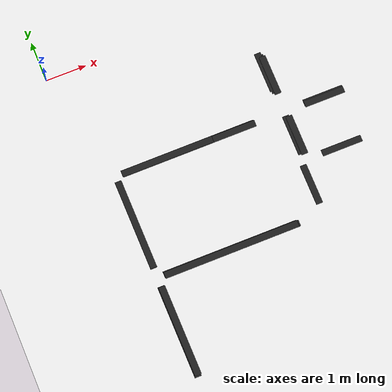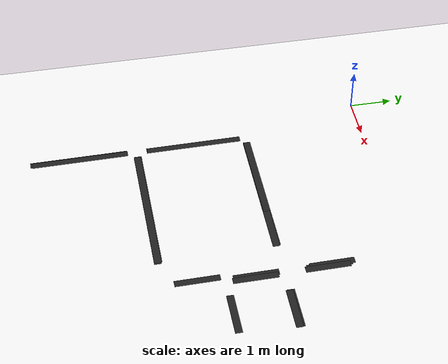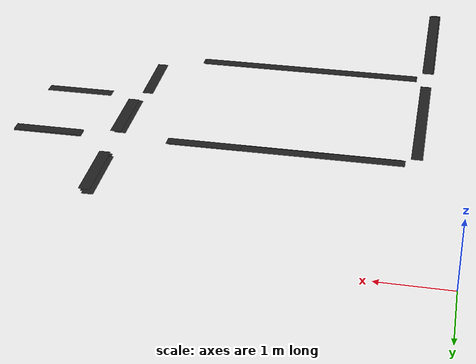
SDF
<sdf version="1.7">
 <world name="default">
  <model name="ground_plane">
   <static>1</static>
   <link name="link">
    <collision name="collision">
     <geometry><plane><normal>0 0 1</normal><size>100 100</size></plane></geometry>
     <surface>
      <contact><collide_bitmask>65535</collide_bitmask></contact>
      <friction><ode><mu>100</mu><mu2>50</mu2></ode></friction>
     </surface>
    </collision>
    <visual name="visual">
     <cast_shadows>0</cast_shadows>
     <geometry><plane><normal>0 0 1</normal><size>100 100</size></plane></geometry>
     <material>
      <script><uri>file://media/materials/scripts/gazebo.material</uri><name>Gazebo/White</name></script>
     </material>
    </visual>
   </link>
  </model>
  <model name="unit_box_clone_0_clone_clone_0_clone_clone_clone">
   <link name="link">
    <inertial>
     <mass>1</mass>
     <inertia>
      <ixx>0.166667</ixx>
      <ixy>0</ixy>
      <ixz>0</ixz>
      <iyy>0.166667</iyy>
      <iyz>0</iyz>
      <izz>0.166667</izz>
     </inertia>
    </inertial>
    <visual name="visual">
     <geometry><box><size>1 0.160776 0.000937</size></box></geometry>
     <material>
      <script><name>Gazebo/Black</name><uri>file://media/materials/scripts/gazebo.material</uri></script>
      <shader type="pixel"><normal_map>__default__</normal_map></shader>
      <ambient>0 0 0 1</ambient>
      <diffuse>0 0 0 1</diffuse>
      <specular>0.1 0.1 0.1 1</specular>
      <emissive>0 0 0 1</emissive>
     </material>
    </visual>
    <collision name="collision">
     <geometry><box><size>1 0.160776 0.000937</size></box></geometry>
     <surface>
      <friction>
       <ode><mu>1</mu><mu2>1</mu2><fdir1>0 0 0</fdir1><slip1>0</slip1><slip2>0</slip2></ode>
       <torsional>
        <coefficient>1</coefficient>
        <patch_radius>0</patch_radius>
        <surface_radius>0</surface_radius>
        <use_patch_radius>1</use_patch_radius>
        <ode><slip>0</slip></ode>
       </torsional>
      </friction>
      <bounce><restitution_coefficient>0</restitution_coefficient><threshold>1e+06</threshold></bounce>
      <contact>
       <collide_without_contact>0</collide_without_contact>
       <collide_without_contact_bitmask>1</collide_without_contact_bitmask>
       <collide_bitmask>1</collide_bitmask>
       <ode>
        <soft_cfm>0</soft_cfm>
        <soft_erp>0.2</soft_erp>
        <kp>1e+13</kp>
        <kd>1</kd>
        <max_vel>0.01</max_vel>
        <min_depth>0</min_depth>
       </ode>
       <bullet>
        <split_impulse>1</split_impulse>
        <split_impulse_penetration_threshold>-0.01</split_impulse_penetration_threshold>
        <soft_cfm>0</soft_cfm>
        <soft_erp>0.2</soft_erp>
        <kp>1e+13</kp>
        <kd>1</kd>
       </bullet>
      </contact>
     </surface>
    </collision>
   </link>
   <static>0</static>
   <pose>4.8423 -4.65666 0.000468 -0 -0 -1.56222</pose>
  </model>
  <model name="unit_box_clone_0_clone_clone_0_clone_clone_0">
   <link name="link">
    <inertial>
     <mass>1</mass>
     <inertia>
      <ixx>0.166667</ixx>
      <ixy>0</ixy>
      <ixz>0</ixz>
      <iyy>0.166667</iyy>
      <iyz>0</iyz>
      <izz>0.166667</izz>
     </inertia>
    </inertial>
    <visual name="visual">
     <geometry><box><size>1 0.160776 0.000937</size></box></geometry>
     <material>
      <script><name>Gazebo/Black</name><uri>file://media/materials/scripts/gazebo.material</uri></script>
      <shader type="pixel"><normal_map>__default__</normal_map></shader>
      <ambient>0 0 0 1</ambient>
      <diffuse>0 0 0 1</diffuse>
      <specular>0.1 0.1 0.1 1</specular>
      <emissive>0 0 0 1</emissive>
     </material>
    </visual>
    <collision name="collision">
     <geometry><box><size>1 0.160776 0.000937</size></box></geometry>
     <surface>
      <friction>
       <ode><mu>1</mu><mu2>1</mu2><fdir1>0 0 0</fdir1><slip1>0</slip1><slip2>0</slip2></ode>
       <torsional>
        <coefficient>1</coefficient>
        <patch_radius>0</patch_radius>
        <surface_radius>0</surface_radius>
        <use_patch_radius>1</use_patch_radius>
        <ode><slip>0</slip></ode>
       </torsional>
      </friction>
      <bounce><restitution_coefficient>0</restitution_coefficient><threshold>1e+06</threshold></bounce>
      <contact>
       <collide_without_contact>0</collide_without_contact>
       <collide_without_contact_bitmask>1</collide_without_contact_bitmask>
       <collide_bitmask>1</collide_bitmask>
       <ode>
        <soft_cfm>0</soft_cfm>
        <soft_erp>0.2</soft_erp>
        <kp>1e+13</kp>
        <kd>1</kd>
        <max_vel>0.01</max_vel>
        <min_depth>0</min_depth>
       </ode>
       <bullet>
        <split_impulse>1</split_impulse>
        <split_impulse_penetration_threshold>-0.01</split_impulse_penetration_threshold>
        <soft_cfm>0</soft_cfm>
        <soft_erp>0.2</soft_erp>
        <kp>1e+13</kp>
        <kd>1</kd>
       </bullet>
      </contact>
     </surface>
    </collision>
   </link>
   <static>0</static>
   <pose>5.94297 -2.79646 0.001248 0 5.9e-05 -0.000883</pose>
  </model>
  <model name="unit_box_clone_0_clone_clone_0_clone_clone_clone_0">
   <link name="link">
    <inertial>
     <mass>1</mass>
     <inertia>
      <ixx>0.166667</ixx>
      <ixy>0</ixy>
      <ixz>0</ixz>
      <iyy>0.166667</iyy>
      <iyz>0</iyz>
      <izz>0.166667</izz>
     </inertia>
    </inertial>
    <visual name="visual">
     <geometry><box><size>1 0.160776 0.000937</size></box></geometry>
     <material>
      <script><name>Gazebo/Black</name><uri>file://media/materials/scripts/gazebo.material</uri></script>
      <shader type="pixel"><normal_map>__default__</normal_map></shader>
      <ambient>0 0 0 1</ambient>
      <diffuse>0 0 0 1</diffuse>
      <specular>0.1 0.1 0.1 1</specular>
      <emissive>0 0 0 1</emissive>
     </material>
    </visual>
    <collision name="collision">
     <geometry><box><size>1 0.160776 0.000937</size></box></geometry>
     <surface>
      <friction>
       <ode><mu>1</mu><mu2>1</mu2><fdir1>0 0 0</fdir1><slip1>0</slip1><slip2>0</slip2></ode>
       <torsional>
        <coefficient>1</coefficient>
        <patch_radius>0</patch_radius>
        <surface_radius>0</surface_radius>
        <use_patch_radius>1</use_patch_radius>
        <ode><slip>0</slip></ode>
       </torsional>
      </friction>
      <bounce><restitution_coefficient>0</restitution_coefficient><threshold>1e+06</threshold></bounce>
      <contact>
       <collide_without_contact>0</collide_without_contact>
       <collide_without_contact_bitmask>1</collide_without_contact_bitmask>
       <collide_bitmask>1</collide_bitmask>
       <ode>
        <soft_cfm>0</soft_cfm>
        <soft_erp>0.2</soft_erp>
        <kp>1e+13</kp>
        <kd>1</kd>
        <max_vel>0.01</max_vel>
        <min_depth>0</min_depth>
       </ode>
       <bullet>
        <split_impulse>1</split_impulse>
        <split_impulse_penetration_threshold>-0.01</split_impulse_penetration_threshold>
        <soft_cfm>0</soft_cfm>
        <soft_erp>0.2</soft_erp>
        <kp>1e+13</kp>
        <kd>1</kd>
       </bullet>
      </contact>
     </surface>
    </collision>
   </link>
   <static>0</static>
   <pose>4.88081 -1.72045 0.001388 -4e-06 4.1e-05 -1.56173</pose>
  </model>
  <model name="unit_box_clone_0_clone_clone_0_clone_clone_0_clone">
   <link name="link">
    <inertial>
     <mass>1</mass>
     <inertia>
      <ixx>0.166667</ixx>
      <ixy>0</ixy>
      <ixz>0</ixz>
      <iyy>0.166667</iyy>
      <iyz>0</iyz>
      <izz>0.166667</izz>
     </inertia>
    </inertial>
    <visual name="visual">
     <geometry><box><size>1 0.160776 0.000937</size></box></geometry>
     <material>
      <script><name>Gazebo/Black</name><uri>file://media/materials/scripts/gazebo.material</uri></script>
      <shader type="pixel"><normal_map>__default__</normal_map></shader>
      <ambient>0 0 0 1</ambient>
      <diffuse>0 0 0 1</diffuse>
      <specular>0.1 0.1 0.1 1</specular>
      <emissive>0 0 0 1</emissive>
     </material>
    </visual>
    <collision name="collision">
     <geometry><box><size>1 0.160776 0.000937</size></box></geometry>
     <surface>
      <friction>
       <ode><mu>1</mu><mu2>1</mu2><fdir1>0 0 0</fdir1><slip1>0</slip1><slip2>0</slip2></ode>
       <torsional>
        <coefficient>1</coefficient>
        <patch_radius>0</patch_radius>
        <surface_radius>0</surface_radius>
        <use_patch_radius>1</use_patch_radius>
        <ode><slip>0</slip></ode>
       </torsional>
      </friction>
      <bounce><restitution_coefficient>0</restitution_coefficient><threshold>1e+06</threshold></bounce>
      <contact>
       <collide_without_contact>0</collide_without_contact>
       <collide_without_contact_bitmask>1</collide_without_contact_bitmask>
       <collide_bitmask>1</collide_bitmask>
       <ode>
        <soft_cfm>0</soft_cfm>
        <soft_erp>0.2</soft_erp>
        <kp>1e+13</kp>
        <kd>1</kd>
        <max_vel>0.01</max_vel>
        <min_depth>0</min_depth>
       </ode>
       <bullet>
        <split_impulse>1</split_impulse>
        <split_impulse_penetration_threshold>-0.01</split_impulse_penetration_threshold>
        <soft_cfm>0</soft_cfm>
        <soft_erp>0.2</soft_erp>
        <kp>1e+13</kp>
        <kd>1</kd>
       </bullet>
      </contact>
     </surface>
    </collision>
   </link>
   <static>0</static>
   <pose>5.8624 -4.05427 0.000466 0 5e-06 0.000248</pose>
  </model>
  <model name="unit_box_clone_0_clone_clone_0_clone_clone_clone_2_clone_2">
   <link name="link">
    <inertial>
     <mass>1</mass>
     <inertia>
      <ixx>0.166667</ixx>
      <ixy>0</ixy>
      <ixz>0</ixz>
      <iyy>0.166667</iyy>
      <iyz>0</iyz>
      <izz>0.166667</izz>
     </inertia>
    </inertial>
    <visual name="visual">
     <geometry><box><size>1 0.160776 0.000937</size></box></geometry>
     <material>
      <script><name>Gazebo/Black</name><uri>file://media/materials/scripts/gazebo.material</uri></script>
      <shader type="pixel"><normal_map>__default__</normal_map></shader>
      <ambient>0 0 0 1</ambient>
      <diffuse>0 0 0 1</diffuse>
      <specular>0.1 0.1 0.1 1</specular>
      <emissive>0 0 0 1</emissive>
     </material>
    </visual>
    <collision name="collision">
     <geometry><box><size>1 0.160776 0.000937</size></box></geometry>
     <surface>
      <friction>
       <ode><mu>1</mu><mu2>1</mu2><fdir1>0 0 0</fdir1><slip1>0</slip1><slip2>0</slip2></ode>
       <torsional>
        <coefficient>1</coefficient>
        <patch_radius>0</patch_radius>
        <surface_radius>0</surface_radius>
        <use_patch_radius>1</use_patch_radius>
        <ode><slip>0</slip></ode>
       </torsional>
      </friction>
      <bounce><restitution_coefficient>0</restitution_coefficient><threshold>1e+06</threshold></bounce>
      <contact>
       <collide_without_contact>0</collide_without_contact>
       <collide_without_contact_bitmask>1</collide_without_contact_bitmask>
       <collide_bitmask>1</collide_bitmask>
       <ode>
        <soft_cfm>0</soft_cfm>
        <soft_erp>0.2</soft_erp>
        <kp>1e+13</kp>
        <kd>1</kd>
        <max_vel>0.01</max_vel>
        <min_depth>0</min_depth>
       </ode>
       <bullet>
        <split_impulse>1</split_impulse>
        <split_impulse_penetration_threshold>-0.01</split_impulse_penetration_threshold>
        <soft_cfm>0</soft_cfm>
        <soft_erp>0.2</soft_erp>
        <kp>1e+13</kp>
        <kd>1</kd>
       </bullet>
      </contact>
     </surface>
    </collision>
   </link>
   <static>0</static>
   <pose>4.91277 -3.39491 0.000461 0 -1.4e-05 -1.56382</pose>
  </model>
  <model name="unit_box_clone_0_clone_clone_0_clone_clone_clone_2_clone_3">
   <link name="link">
    <inertial>
     <mass>1</mass>
     <inertia>
      <ixx>0.166667</ixx>
      <ixy>0</ixy>
      <ixz>0</ixz>
      <iyy>0.166667</iyy>
      <iyz>0</iyz>
      <izz>0.166667</izz>
     </inertia>
    </inertial>
    <visual name="visual">
     <geometry><box><size>1 0.160776 0.000937</size></box></geometry>
     <material>
      <script><name>Gazebo/Black</name><uri>file://media/materials/scripts/gazebo.material</uri></script>
      <shader type="pixel"><normal_map>__default__</normal_map></shader>
      <ambient>0 0 0 1</ambient>
      <diffuse>0 0 0 1</diffuse>
      <specular>0.1 0.1 0.1 1</specular>
      <emissive>0 0 0 1</emissive>
     </material>
    </visual>
    <collision name="collision">
     <geometry><box><size>1 0.160776 0.000937</size></box></geometry>
     <surface>
      <friction>
       <ode><mu>1</mu><mu2>1</mu2><fdir1>0 0 0</fdir1><slip1>0</slip1><slip2>0</slip2></ode>
       <torsional>
        <coefficient>1</coefficient>
        <patch_radius>0</patch_radius>
        <surface_radius>0</surface_radius>
        <use_patch_radius>1</use_patch_radius>
        <ode><slip>0</slip></ode>
       </torsional>
      </friction>
      <bounce><restitution_coefficient>0</restitution_coefficient><threshold>1e+06</threshold></bounce>
      <contact>
       <collide_without_contact>0</collide_without_contact>
       <collide_without_contact_bitmask>1</collide_without_contact_bitmask>
       <collide_bitmask>1</collide_bitmask>
       <ode>
        <soft_cfm>0</soft_cfm>
        <soft_erp>0.2</soft_erp>
        <kp>1e+13</kp>
        <kd>1</kd>
        <max_vel>0.01</max_vel>
        <min_depth>0</min_depth>
       </ode>
       <bullet>
        <split_impulse>1</split_impulse>
        <split_impulse_penetration_threshold>-0.01</split_impulse_penetration_threshold>
        <soft_cfm>0</soft_cfm>
        <soft_erp>0.2</soft_erp>
        <kp>1e+13</kp>
        <kd>1</kd>
       </bullet>
      </contact>
     </surface>
    </collision>
   </link>
   <static>0</static>
   <pose>4.98514 -3.42209 0.001395 -4.9e-05 2e-05 -1.56664</pose>
  </model>
  <model name="unit_box_clone_0_clone_clone_0_clone_clone_clone_0_clone_0">
   <link name="link">
    <inertial>
     <mass>1</mass>
     <inertia>
      <ixx>0.166667</ixx>
      <ixy>0</ixy>
      <ixz>0</ixz>
      <iyy>0.166667</iyy>
      <iyz>0</iyz>
      <izz>0.166667</izz>
     </inertia>
    </inertial>
    <visual name="visual">
     <geometry><box><size>1 0.160776 0.000937</size></box></geometry>
     <material>
      <script><name>Gazebo/Black</name><uri>file://media/materials/scripts/gazebo.material</uri></script>
      <shader type="pixel"><normal_map>__default__</normal_map></shader>
      <ambient>0 0 0 1</ambient>
      <diffuse>0 0 0 1</diffuse>
      <specular>0.1 0.1 0.1 1</specular>
      <emissive>0 0 0 1</emissive>
     </material>
    </visual>
    <collision name="collision">
     <geometry><box><size>1 0.160776 0.000937</size></box></geometry>
     <surface>
      <friction>
       <ode><mu>1</mu><mu2>1</mu2><fdir1>0 0 0</fdir1><slip1>0</slip1><slip2>0</slip2></ode>
       <torsional>
        <coefficient>1</coefficient>
        <patch_radius>0</patch_radius>
        <surface_radius>0</surface_radius>
        <use_patch_radius>1</use_patch_radius>
        <ode><slip>0</slip></ode>
       </torsional>
      </friction>
      <bounce><restitution_coefficient>0</restitution_coefficient><threshold>1e+06</threshold></bounce>
      <contact>
       <collide_without_contact>0</collide_without_contact>
       <collide_without_contact_bitmask>1</collide_without_contact_bitmask>
       <collide_bitmask>1</collide_bitmask>
       <ode>
        <soft_cfm>0</soft_cfm>
        <soft_erp>0.2</soft_erp>
        <kp>1e+13</kp>
        <kd>1</kd>
        <max_vel>0.01</max_vel>
        <min_depth>0</min_depth>
       </ode>
       <bullet>
        <split_impulse>1</split_impulse>
        <split_impulse_penetration_threshold>-0.01</split_impulse_penetration_threshold>
        <soft_cfm>0</soft_cfm>
        <soft_erp>0.2</soft_erp>
        <kp>1e+13</kp>
        <kd>1</kd>
       </bullet>
      </contact>
     </surface>
    </collision>
   </link>
   <static>0</static>
   <pose>4.91442 -1.78666 0.000448 -1e-06 4.1e-05 -1.5623</pose>
  </model>
  <model name="unit_box_clone_0_clone_clone_0_clone_clone_clone_0_clone_1">
   <link name="link">
    <inertial>
     <mass>1</mass>
     <inertia>
      <ixx>0.166667</ixx>
      <ixy>0</ixy>
      <ixz>0</ixz>
      <iyy>0.166667</iyy>
      <iyz>0</iyz>
      <izz>0.166667</izz>
     </inertia>
    </inertial>
    <visual name="visual">
     <geometry><box><size>1 0.160776 0.000937</size></box></geometry>
     <material>
      <script><name>Gazebo/Black</name><uri>file://media/materials/scripts/gazebo.material</uri></script>
      <shader type="pixel"><normal_map>__default__</normal_map></shader>
      <ambient>0 0 0 1</ambient>
      <diffuse>0 0 0 1</diffuse>
      <specular>0.1 0.1 0.1 1</specular>
      <emissive>0 0 0 1</emissive>
     </material>
    </visual>
    <collision name="collision">
     <geometry><box><size>1 0.160776 0.000937</size></box></geometry>
     <surface>
      <friction>
       <ode><mu>1</mu><mu2>1</mu2><fdir1>0 0 0</fdir1><slip1>0</slip1><slip2>0</slip2></ode>
       <torsional>
        <coefficient>1</coefficient>
        <patch_radius>0</patch_radius>
        <surface_radius>0</surface_radius>
        <use_patch_radius>1</use_patch_radius>
        <ode><slip>0</slip></ode>
       </torsional>
      </friction>
      <bounce><restitution_coefficient>0</restitution_coefficient><threshold>1e+06</threshold></bounce>
      <contact>
       <collide_without_contact>0</collide_without_contact>
       <collide_without_contact_bitmask>1</collide_without_contact_bitmask>
       <collide_bitmask>1</collide_bitmask>
       <ode>
        <soft_cfm>0</soft_cfm>
        <soft_erp>0.2</soft_erp>
        <kp>1e+13</kp>
        <kd>1</kd>
        <max_vel>0.01</max_vel>
        <min_depth>0</min_depth>
       </ode>
       <bullet>
        <split_impulse>1</split_impulse>
        <split_impulse_penetration_threshold>-0.01</split_impulse_penetration_threshold>
        <soft_cfm>0</soft_cfm>
        <soft_erp>0.2</soft_erp>
        <kp>1e+13</kp>
        <kd>1</kd>
       </bullet>
      </contact>
     </surface>
    </collision>
   </link>
   <static>0</static>
   <pose>4.95876 -1.83058 0.002306 -0.000567 -3e-06 -1.56223</pose>
  </model>
  <model name="unit_box_clone_0_clone_clone_0_clone_clone_0_clone_1">
   <link name="link">
    <inertial>
     <mass>1</mass>
     <inertia>
      <ixx>0.166667</ixx>
      <ixy>0</ixy>
      <ixz>0</ixz>
      <iyy>0.166667</iyy>
      <iyz>0</iyz>
      <izz>0.166667</izz>
     </inertia>
    </inertial>
    <visual name="visual">
     <geometry><box><size>1 0.160776 0.000937</size></box></geometry>
     <material>
      <script><name>Gazebo/Black</name><uri>file://media/materials/scripts/gazebo.material</uri></script>
      <shader type="pixel"><normal_map>__default__</normal_map></shader>
      <ambient>0 0 0 1</ambient>
      <diffuse>0 0 0 1</diffuse>
      <specular>0.1 0.1 0.1 1</specular>
      <emissive>0 0 0 1</emissive>
     </material>
    </visual>
    <collision name="collision">
     <geometry><box><size>1 0.160776 0.000937</size></box></geometry>
     <surface>
      <friction>
       <ode><mu>1</mu><mu2>1</mu2><fdir1>0 0 0</fdir1><slip1>0</slip1><slip2>0</slip2></ode>
       <torsional>
        <coefficient>1</coefficient>
        <patch_radius>0</patch_radius>
        <surface_radius>0</surface_radius>
        <use_patch_radius>1</use_patch_radius>
        <ode><slip>0</slip></ode>
       </torsional>
      </friction>
      <bounce><restitution_coefficient>0</restitution_coefficient><threshold>1e+06</threshold></bounce>
      <contact>
       <collide_without_contact>0</collide_without_contact>
       <collide_without_contact_bitmask>1</collide_without_contact_bitmask>
       <collide_bitmask>1</collide_bitmask>
       <ode>
        <soft_cfm>0</soft_cfm>
        <soft_erp>0.2</soft_erp>
        <kp>1e+13</kp>
        <kd>1</kd>
        <max_vel>0.01</max_vel>
        <min_depth>0</min_depth>
       </ode>
       <bullet>
        <split_impulse>1</split_impulse>
        <split_impulse_penetration_threshold>-0.01</split_impulse_penetration_threshold>
        <soft_cfm>0</soft_cfm>
        <soft_erp>0.2</soft_erp>
        <kp>1e+13</kp>
        <kd>1</kd>
       </bullet>
      </contact>
     </surface>
    </collision>
   </link>
   <static>0</static>
   <pose>5.93145 -2.76241 0.000404 -0 -0.000129 0.000216</pose>
  </model>
  <model name="unit_box_clone_0_clone_clone_0_clone_clone_4">
   <link name="link">
    <inertial>
     <mass>1</mass>
     <inertia>
      <ixx>0.166667</ixx>
      <ixy>0</ixy>
      <ixz>0</ixz>
      <iyy>0.166667</iyy>
      <iyz>0</iyz>
      <izz>0.166667</izz>
     </inertia>
    </inertial>
    <visual name="visual">
     <geometry><box><size>3.33465 0.160776 0.000937</size></box></geometry>
     <material>
      <script><name>Gazebo/Black</name><uri>file://media/materials/scripts/gazebo.material</uri></script>
      <shader type="pixel"><normal_map>__default__</normal_map></shader>
      <ambient>0 0 0 1</ambient>
      <diffuse>0 0 0 1</diffuse>
      <specular>0.1 0.1 0.1 1</specular>
      <emissive>0 0 0 1</emissive>
     </material>
    </visual>
    <collision name="collision">
     <geometry><box><size>3.33465 0.160776 0.000937</size></box></geometry>
     <surface>
      <friction>
       <ode><mu>1</mu><mu2>1</mu2><fdir1>0 0 0</fdir1><slip1>0</slip1><slip2>0</slip2></ode>
       <torsional>
        <coefficient>1</coefficient>
        <patch_radius>0</patch_radius>
        <surface_radius>0</surface_radius>
        <use_patch_radius>1</use_patch_radius>
        <ode><slip>0</slip></ode>
       </torsional>
      </friction>
      <bounce><restitution_coefficient>0</restitution_coefficient><threshold>1e+06</threshold></bounce>
      <contact>
       <collide_without_contact>0</collide_without_contact>
       <collide_without_contact_bitmask>1</collide_without_contact_bitmask>
       <collide_bitmask>1</collide_bitmask>
       <ode>
        <soft_cfm>0</soft_cfm>
        <soft_erp>0.2</soft_erp>
        <kp>1e+13</kp>
        <kd>1</kd>
        <max_vel>0.01</max_vel>
        <min_depth>0</min_depth>
       </ode>
       <bullet>
        <split_impulse>1</split_impulse>
        <split_impulse_penetration_threshold>-0.01</split_impulse_penetration_threshold>
        <soft_cfm>0</soft_cfm>
        <soft_erp>0.2</soft_erp>
        <kp>1e+13</kp>
        <kd>1</kd>
       </bullet>
      </contact>
     </surface>
    </collision>
   </link>
   <static>0</static>
   <pose>2.49459 -2.78128 0.001043 6e-06 4.2e-05 0.001712</pose>
  </model>
  <model name="unit_box_clone_0_clone_clone_0_clone_clone_4_clone">
   <link name="link">
    <inertial>
     <mass>1</mass>
     <inertia>
      <ixx>0.166667</ixx>
      <ixy>0</ixy>
      <ixz>0</ixz>
      <iyy>0.166667</iyy>
      <iyz>0</iyz>
      <izz>0.166667</izz>
     </inertia>
    </inertial>
    <visual name="visual">
     <geometry><box><size>3.33465 0.160776 0.000937</size></box></geometry>
     <material>
      <script><name>Gazebo/Black</name><uri>file://media/materials/scripts/gazebo.material</uri></script>
      <shader type="pixel"><normal_map>__default__</normal_map></shader>
      <ambient>0 0 0 1</ambient>
      <diffuse>0 0 0 1</diffuse>
      <specular>0.1 0.1 0.1 1</specular>
      <emissive>0 0 0 1</emissive>
     </material>
    </visual>
    <collision name="collision">
     <geometry><box><size>3.33465 0.160776 0.000937</size></box></geometry>
     <surface>
      <friction>
       <ode><mu>1</mu><mu2>1</mu2><fdir1>0 0 0</fdir1><slip1>0</slip1><slip2>0</slip2></ode>
       <torsional>
        <coefficient>1</coefficient>
        <patch_radius>0</patch_radius>
        <surface_radius>0</surface_radius>
        <use_patch_radius>1</use_patch_radius>
        <ode><slip>0</slip></ode>
       </torsional>
      </friction>
      <bounce><restitution_coefficient>0</restitution_coefficient><threshold>1e+06</threshold></bounce>
      <contact>
       <collide_without_contact>0</collide_without_contact>
       <collide_without_contact_bitmask>1</collide_without_contact_bitmask>
       <collide_bitmask>1</collide_bitmask>
       <ode>
        <soft_cfm>0</soft_cfm>
        <soft_erp>0.2</soft_erp>
        <kp>1e+13</kp>
        <kd>1</kd>
        <max_vel>0.01</max_vel>
        <min_depth>0</min_depth>
       </ode>
       <bullet>
        <split_impulse>1</split_impulse>
        <split_impulse_penetration_threshold>-0.01</split_impulse_penetration_threshold>
        <soft_cfm>0</soft_cfm>
        <soft_erp>0.2</soft_erp>
        <kp>1e+13</kp>
        <kd>1</kd>
       </bullet>
      </contact>
     </surface>
    </collision>
   </link>
   <static>0</static>
   <pose>2.56677 -5.41073 0.000384 -6e-06 -5.1e-05 0.00017</pose>
  </model>
  <model name="unit_box_clone_0_clone_clone_0_clone_clone_4_clone_0">
   <link name="link">
    <inertial>
     <mass>1</mass>
     <inertia>
      <ixx>0.166667</ixx>
      <ixy>0</ixy>
      <ixz>0</ixz>
      <iyy>0.166667</iyy>
      <iyz>0</iyz>
      <izz>0.166667</izz>
     </inertia>
    </inertial>
    <visual name="visual">
     <geometry><box><size>3.33465 0.160776 0.000937</size></box></geometry>
     <material>
      <script><name>Gazebo/Black</name><uri>file://media/materials/scripts/gazebo.material</uri></script>
      <shader type="pixel"><normal_map>__default__</normal_map></shader>
      <ambient>0 0 0 1</ambient>
      <diffuse>0 0 0 1</diffuse>
      <specular>0.1 0.1 0.1 1</specular>
      <emissive>0 0 0 1</emissive>
     </material>
    </visual>
    <collision name="collision">
     <geometry><box><size>3.33465 0.160776 0.000937</size></box></geometry>
     <surface>
      <friction>
       <ode><mu>1</mu><mu2>1</mu2><fdir1>0 0 0</fdir1><slip1>0</slip1><slip2>0</slip2></ode>
       <torsional>
        <coefficient>1</coefficient>
        <patch_radius>0</patch_radius>
        <surface_radius>0</surface_radius>
        <use_patch_radius>1</use_patch_radius>
        <ode><slip>0</slip></ode>
       </torsional>
      </friction>
      <bounce><restitution_coefficient>0</restitution_coefficient><threshold>1e+06</threshold></bounce>
      <contact>
       <collide_without_contact>0</collide_without_contact>
       <collide_without_contact_bitmask>1</collide_without_contact_bitmask>
       <collide_bitmask>1</collide_bitmask>
       <ode>
        <soft_cfm>0</soft_cfm>
        <soft_erp>0.2</soft_erp>
        <kp>1e+13</kp>
        <kd>1</kd>
        <max_vel>0.01</max_vel>
        <min_depth>0</min_depth>
       </ode>
       <bullet>
        <split_impulse>1</split_impulse>
        <split_impulse_penetration_threshold>-0.01</split_impulse_penetration_threshold>
        <soft_cfm>0</soft_cfm>
        <soft_erp>0.2</soft_erp>
        <kp>1e+13</kp>
        <kd>1</kd>
       </bullet>
      </contact>
     </surface>
    </collision>
   </link>
   <static>0</static>
   <pose>2.5204 -5.39283 0.00128 1.8e-05 -7.7e-05 -0.000655</pose>
  </model>
  <model name="unit_box_clone_0_clone_clone_0_clone_clone_4_clone_1">
   <link name="link">
    <inertial>
     <mass>1</mass>
     <inertia>
      <ixx>0.166667</ixx>
      <ixy>0</ixy>
      <ixz>0</ixz>
      <iyy>0.166667</iyy>
      <iyz>0</iyz>
      <izz>0.166667</izz>
     </inertia>
    </inertial>
    <visual name="visual">
     <geometry><box><size>3.33465 0.160776 0.000937</size></box></geometry>
     <material>
      <script><name>Gazebo/Black</name><uri>file://media/materials/scripts/gazebo.material</uri></script>
      <shader type="pixel"><normal_map>__default__</normal_map></shader>
      <ambient>0 0 0 1</ambient>
      <diffuse>0 0 0 1</diffuse>
      <specular>0.1 0.1 0.1 1</specular>
      <emissive>0 0 0 1</emissive>
     </material>
    </visual>
    <collision name="collision">
     <geometry><box><size>3.33465 0.160776 0.000937</size></box></geometry>
     <surface>
      <friction>
       <ode><mu>1</mu><mu2>1</mu2><fdir1>0 0 0</fdir1><slip1>0</slip1><slip2>0</slip2></ode>
       <torsional>
        <coefficient>1</coefficient>
        <patch_radius>0</patch_radius>
        <surface_radius>0</surface_radius>
        <use_patch_radius>1</use_patch_radius>
        <ode><slip>0</slip></ode>
       </torsional>
      </friction>
      <bounce><restitution_coefficient>0</restitution_coefficient><threshold>1e+06</threshold></bounce>
      <contact>
       <collide_without_contact>0</collide_without_contact>
       <collide_without_contact_bitmask>1</collide_without_contact_bitmask>
       <collide_bitmask>1</collide_bitmask>
       <ode>
        <soft_cfm>0</soft_cfm>
        <soft_erp>0.2</soft_erp>
        <kp>1e+13</kp>
        <kd>1</kd>
        <max_vel>0.01</max_vel>
        <min_depth>0</min_depth>
       </ode>
       <bullet>
        <split_impulse>1</split_impulse>
        <split_impulse_penetration_threshold>-0.01</split_impulse_penetration_threshold>
        <soft_cfm>0</soft_cfm>
        <soft_erp>0.2</soft_erp>
        <kp>1e+13</kp>
        <kd>1</kd>
       </bullet>
      </contact>
     </surface>
    </collision>
   </link>
   <static>0</static>
   <pose>2.5333 -5.40985 0.00222 4.2e-05 -7.7e-05 0.000745</pose>
  </model>
  <model name="unit_box_clone_0_clone_clone_0_clone_clone_4_clone_2">
   <link name="link">
    <inertial>
     <mass>1</mass>
     <inertia>
      <ixx>0.166667</ixx>
      <ixy>0</ixy>
      <ixz>0</ixz>
      <iyy>0.166667</iyy>
      <iyz>0</iyz>
      <izz>0.166667</izz>
     </inertia>
    </inertial>
    <visual name="visual">
     <geometry><box><size>3.33465 0.160776 0.000937</size></box></geometry>
     <material>
      <script><name>Gazebo/Black</name><uri>file://media/materials/scripts/gazebo.material</uri></script>
      <shader type="pixel"><normal_map>__default__</normal_map></shader>
      <ambient>0 0 0 1</ambient>
      <diffuse>0 0 0 1</diffuse>
      <specular>0.1 0.1 0.1 1</specular>
      <emissive>0 0 0 1</emissive>
     </material>
    </visual>
    <collision name="collision">
     <geometry><box><size>3.33465 0.160776 0.000937</size></box></geometry>
     <surface>
      <friction>
       <ode><mu>1</mu><mu2>1</mu2><fdir1>0 0 0</fdir1><slip1>0</slip1><slip2>0</slip2></ode>
       <torsional>
        <coefficient>1</coefficient>
        <patch_radius>0</patch_radius>
        <surface_radius>0</surface_radius>
        <use_patch_radius>1</use_patch_radius>
        <ode><slip>0</slip></ode>
       </torsional>
      </friction>
      <bounce><restitution_coefficient>0</restitution_coefficient><threshold>1e+06</threshold></bounce>
      <contact>
       <collide_without_contact>0</collide_without_contact>
       <collide_without_contact_bitmask>1</collide_without_contact_bitmask>
       <collide_bitmask>1</collide_bitmask>
       <ode>
        <soft_cfm>0</soft_cfm>
        <soft_erp>0.2</soft_erp>
        <kp>1e+13</kp>
        <kd>1</kd>
        <max_vel>0.01</max_vel>
        <min_depth>0</min_depth>
       </ode>
       <bullet>
        <split_impulse>1</split_impulse>
        <split_impulse_penetration_threshold>-0.01</split_impulse_penetration_threshold>
        <soft_cfm>0</soft_cfm>
        <soft_erp>0.2</soft_erp>
        <kp>1e+13</kp>
        <kd>1</kd>
       </bullet>
      </contact>
     </surface>
    </collision>
   </link>
   <static>0</static>
   <pose>2.51137 -2.78805 0.000322 -1.2e-05 -8.9e-05 -0.00038</pose>
  </model>
  <model name="unit_box_clone_0_clone_clone_0_clone_clone_4_clone_3">
   <link name="link">
    <inertial>
     <mass>1</mass>
     <inertia>
      <ixx>0.166667</ixx>
      <ixy>0</ixy>
      <ixz>0</ixz>
      <iyy>0.166667</iyy>
      <iyz>0</iyz>
      <izz>0.166667</izz>
     </inertia>
    </inertial>
    <visual name="visual">
     <geometry><box><size>3.33465 0.160776 0.000937</size></box></geometry>
     <material>
      <script><name>Gazebo/Black</name><uri>file://media/materials/scripts/gazebo.material</uri></script>
      <shader type="pixel"><normal_map>__default__</normal_map></shader>
      <ambient>0 0 0 1</ambient>
      <diffuse>0 0 0 1</diffuse>
      <specular>0.1 0.1 0.1 1</specular>
      <emissive>0 0 0 1</emissive>
     </material>
    </visual>
    <collision name="collision">
     <geometry><box><size>3.33465 0.160776 0.000937</size></box></geometry>
     <surface>
      <friction>
       <ode><mu>1</mu><mu2>1</mu2><fdir1>0 0 0</fdir1><slip1>0</slip1><slip2>0</slip2></ode>
       <torsional>
        <coefficient>1</coefficient>
        <patch_radius>0</patch_radius>
        <surface_radius>0</surface_radius>
        <use_patch_radius>1</use_patch_radius>
        <ode><slip>0</slip></ode>
       </torsional>
      </friction>
      <bounce><restitution_coefficient>0</restitution_coefficient><threshold>1e+06</threshold></bounce>
      <contact>
       <collide_without_contact>0</collide_without_contact>
       <collide_without_contact_bitmask>1</collide_without_contact_bitmask>
       <collide_bitmask>1</collide_bitmask>
       <ode>
        <soft_cfm>0</soft_cfm>
        <soft_erp>0.2</soft_erp>
        <kp>1e+13</kp>
        <kd>1</kd>
        <max_vel>0.01</max_vel>
        <min_depth>0</min_depth>
       </ode>
       <bullet>
        <split_impulse>1</split_impulse>
        <split_impulse_penetration_threshold>-0.01</split_impulse_penetration_threshold>
        <soft_cfm>0</soft_cfm>
        <soft_erp>0.2</soft_erp>
        <kp>1e+13</kp>
        <kd>1</kd>
       </bullet>
      </contact>
     </surface>
    </collision>
   </link>
   <static>0</static>
   <pose>2.52284 -2.79475 0.000795 1.6e-05 -0.000372 0.000581</pose>
  </model>
  <model name="unit_box_clone_0_clone_clone_0_clone_clone_clone_4">
   <link name="link">
    <inertial>
     <mass>1</mass>
     <inertia>
      <ixx>0.166667</ixx>
      <ixy>0</ixy>
      <ixz>0</ixz>
      <iyy>0.166667</iyy>
      <iyz>0</iyz>
      <izz>0.166667</izz>
     </inertia>
    </inertial>
    <visual name="visual">
     <geometry><box><size>2.22866 0.160776 0.000937</size></box></geometry>
     <material>
      <script><name>Gazebo/Black</name><uri>file://media/materials/scripts/gazebo.material</uri></script>
      <shader type="pixel"><normal_map>__default__</normal_map></shader>
      <ambient>0 0 0 1</ambient>
      <diffuse>0 0 0 1</diffuse>
      <specular>0.1 0.1 0.1 1</specular>
      <emissive>0 0 0 1</emissive>
     </material>
    </visual>
    <collision name="collision">
     <geometry><box><size>2.22866 0.160776 0.000937</size></box></geometry>
     <surface>
      <friction>
       <ode><mu>1</mu><mu2>1</mu2><fdir1>0 0 0</fdir1><slip1>0</slip1><slip2>0</slip2></ode>
       <torsional>
        <coefficient>1</coefficient>
        <patch_radius>0</patch_radius>
        <surface_radius>0</surface_radius>
        <use_patch_radius>1</use_patch_radius>
        <ode><slip>0</slip></ode>
       </torsional>
      </friction>
      <bounce><restitution_coefficient>0</restitution_coefficient><threshold>1e+06</threshold></bounce>
      <contact>
       <collide_without_contact>0</collide_without_contact>
       <collide_without_contact_bitmask>1</collide_without_contact_bitmask>
       <collide_bitmask>1</collide_bitmask>
       <ode>
        <soft_cfm>0</soft_cfm>
        <soft_erp>0.2</soft_erp>
        <kp>1e+13</kp>
        <kd>1</kd>
        <max_vel>0.01</max_vel>
        <min_depth>0</min_depth>
       </ode>
       <bullet>
        <split_impulse>1</split_impulse>
        <split_impulse_penetration_threshold>-0.01</split_impulse_penetration_threshold>
        <soft_cfm>0</soft_cfm>
        <soft_erp>0.2</soft_erp>
        <kp>1e+13</kp>
        <kd>1</kd>
       </bullet>
      </contact>
     </surface>
    </collision>
   </link>
   <static>0</static>
   <pose>0.686181 -4.03475 0.002248 9e-06 9.1e-05 -1.56161</pose>
  </model>
  <model name="unit_box_clone_0_clone_clone_0_clone_clone_clone_5">
   <link name="link">
    <inertial>
     <mass>1</mass>
     <inertia>
      <ixx>0.166667</ixx>
      <ixy>0</ixy>
      <ixz>0</ixz>
      <iyy>0.166667</iyy>
      <iyz>0</iyz>
      <izz>0.166667</izz>
     </inertia>
    </inertial>
    <visual name="visual">
     <geometry><box><size>2.22866 0.160776 0.000937</size></box></geometry>
     <material>
      <script><name>Gazebo/Black</name><uri>file://media/materials/scripts/gazebo.material</uri></script>
      <shader type="pixel"><normal_map>__default__</normal_map></shader>
      <ambient>0 0 0 1</ambient>
      <diffuse>0 0 0 1</diffuse>
      <specular>0.1 0.1 0.1 1</specular>
      <emissive>0 0 0 1</emissive>
     </material>
    </visual>
    <collision name="collision">
     <geometry><box><size>2.22866 0.160776 0.000937</size></box></geometry>
     <surface>
      <friction>
       <ode><mu>1</mu><mu2>1</mu2><fdir1>0 0 0</fdir1><slip1>0</slip1><slip2>0</slip2></ode>
       <torsional>
        <coefficient>1</coefficient>
        <patch_radius>0</patch_radius>
        <surface_radius>0</surface_radius>
        <use_patch_radius>1</use_patch_radius>
        <ode><slip>0</slip></ode>
       </torsional>
      </friction>
      <bounce><restitution_coefficient>0</restitution_coefficient><threshold>1e+06</threshold></bounce>
      <contact>
       <collide_without_contact>0</collide_without_contact>
       <collide_without_contact_bitmask>1</collide_without_contact_bitmask>
       <collide_bitmask>1</collide_bitmask>
       <ode>
        <soft_cfm>0</soft_cfm>
        <soft_erp>0.2</soft_erp>
        <kp>1e+13</kp>
        <kd>1</kd>
        <max_vel>0.01</max_vel>
        <min_depth>0</min_depth>
       </ode>
       <bullet>
        <split_impulse>1</split_impulse>
        <split_impulse_penetration_threshold>-0.01</split_impulse_penetration_threshold>
        <soft_cfm>0</soft_cfm>
        <soft_erp>0.2</soft_erp>
        <kp>1e+13</kp>
        <kd>1</kd>
       </bullet>
      </contact>
     </surface>
    </collision>
   </link>
   <static>0</static>
   <pose>0.686166 -4.04797 0.001328 9e-06 0.000108 -1.56212</pose>
  </model>
  <model name="unit_box_clone_0_clone_clone_0_clone_clone_clone_4_clone_0_clone">
   <link name="link">
    <inertial>
     <mass>1</mass>
     <inertia>
      <ixx>0.166667</ixx>
      <ixy>0</ixy>
      <ixz>0</ixz>
      <iyy>0.166667</iyy>
      <iyz>0</iyz>
      <izz>0.166667</izz>
     </inertia>
    </inertial>
    <visual name="visual">
     <geometry><box><size>2.22866 0.160776 0.000937</size></box></geometry>
     <material>
      <script><name>Gazebo/Black</name><uri>file://media/materials/scripts/gazebo.material</uri></script>
      <shader type="pixel"><normal_map>__default__</normal_map></shader>
      <ambient>0 0 0 1</ambient>
      <diffuse>0 0 0 1</diffuse>
      <specular>0.1 0.1 0.1 1</specular>
      <emissive>0 0 0 1</emissive>
     </material>
    </visual>
    <collision name="collision">
     <geometry><box><size>2.22866 0.160776 0.000937</size></box></geometry>
     <surface>
      <friction>
       <ode><mu>1</mu><mu2>1</mu2><fdir1>0 0 0</fdir1><slip1>0</slip1><slip2>0</slip2></ode>
       <torsional>
        <coefficient>1</coefficient>
        <patch_radius>0</patch_radius>
        <surface_radius>0</surface_radius>
        <use_patch_radius>1</use_patch_radius>
        <ode><slip>0</slip></ode>
       </torsional>
      </friction>
      <bounce><restitution_coefficient>0</restitution_coefficient><threshold>1e+06</threshold></bounce>
      <contact>
       <collide_without_contact>0</collide_without_contact>
       <collide_without_contact_bitmask>1</collide_without_contact_bitmask>
       <collide_bitmask>1</collide_bitmask>
       <ode>
        <soft_cfm>0</soft_cfm>
        <soft_erp>0.2</soft_erp>
        <kp>1e+13</kp>
        <kd>1</kd>
        <max_vel>0.01</max_vel>
        <min_depth>0</min_depth>
       </ode>
       <bullet>
        <split_impulse>1</split_impulse>
        <split_impulse_penetration_threshold>-0.01</split_impulse_penetration_threshold>
        <soft_cfm>0</soft_cfm>
        <soft_erp>0.2</soft_erp>
        <kp>1e+13</kp>
        <kd>1</kd>
       </bullet>
      </contact>
     </surface>
    </collision>
   </link>
   <static>0</static>
   <pose>0.695613 -6.7313 0.002166 -1.3e-05 -9.7e-05 -1.56131</pose>
  </model>
  <model name="unit_box_clone_0_clone_clone_0_clone_clone_clone_4_clone_0_clone_0">
   <link name="link">
    <inertial>
     <mass>1</mass>
     <inertia>
      <ixx>0.166667</ixx>
      <ixy>0</ixy>
      <ixz>0</ixz>
      <iyy>0.166667</iyy>
      <iyz>0</iyz>
      <izz>0.166667</izz>
     </inertia>
    </inertial>
    <visual name="visual">
     <geometry><box><size>2.22866 0.160776 0.000937</size></box></geometry>
     <material>
      <script><name>Gazebo/Black</name><uri>file://media/materials/scripts/gazebo.material</uri></script>
      <shader type="pixel"><normal_map>__default__</normal_map></shader>
      <ambient>0 0 0 1</ambient>
      <diffuse>0 0 0 1</diffuse>
      <specular>0.1 0.1 0.1 1</specular>
      <emissive>0 0 0 1</emissive>
     </material>
    </visual>
    <collision name="collision">
     <geometry><box><size>2.22866 0.160776 0.000937</size></box></geometry>
     <surface>
      <friction>
       <ode><mu>1</mu><mu2>1</mu2><fdir1>0 0 0</fdir1><slip1>0</slip1><slip2>0</slip2></ode>
       <torsional>
        <coefficient>1</coefficient>
        <patch_radius>0</patch_radius>
        <surface_radius>0</surface_radius>
        <use_patch_radius>1</use_patch_radius>
        <ode><slip>0</slip></ode>
       </torsional>
      </friction>
      <bounce><restitution_coefficient>0</restitution_coefficient><threshold>1e+06</threshold></bounce>
      <contact>
       <collide_without_contact>0</collide_without_contact>
       <collide_without_contact_bitmask>1</collide_without_contact_bitmask>
       <collide_bitmask>1</collide_bitmask>
       <ode>
        <soft_cfm>0</soft_cfm>
        <soft_erp>0.2</soft_erp>
        <kp>1e+13</kp>
        <kd>1</kd>
        <max_vel>0.01</max_vel>
        <min_depth>0</min_depth>
       </ode>
       <bullet>
        <split_impulse>1</split_impulse>
        <split_impulse_penetration_threshold>-0.01</split_impulse_penetration_threshold>
        <soft_cfm>0</soft_cfm>
        <soft_erp>0.2</soft_erp>
        <kp>1e+13</kp>
        <kd>1</kd>
       </bullet>
      </contact>
     </surface>
    </collision>
   </link>
   <static>0</static>
   <pose>0.712335 -6.73732 0.002982 -1e-05 -0.000207 -1.56124</pose>
  </model>
  <model name="unit_box_clone_0_clone_clone_0_clone_clone_clone_4_clone_0_clone_1">
   <link name="link">
    <inertial>
     <mass>1</mass>
     <inertia>
      <ixx>0.166667</ixx>
      <ixy>0</ixy>
      <ixz>0</ixz>
      <iyy>0.166667</iyy>
      <iyz>0</iyz>
      <izz>0.166667</izz>
     </inertia>
    </inertial>
    <visual name="visual">
     <geometry><box><size>2.22866 0.160776 0.000937</size></box></geometry>
     <material>
      <script><name>Gazebo/Black</name><uri>file://media/materials/scripts/gazebo.material</uri></script>
      <shader type="pixel"><normal_map>__default__</normal_map></shader>
      <ambient>0 0 0 1</ambient>
      <diffuse>0 0 0 1</diffuse>
      <specular>0.1 0.1 0.1 1</specular>
      <emissive>0 0 0 1</emissive>
     </material>
    </visual>
    <collision name="collision">
     <geometry><box><size>2.22866 0.160776 0.000937</size></box></geometry>
     <surface>
      <friction>
       <ode><mu>1</mu><mu2>1</mu2><fdir1>0 0 0</fdir1><slip1>0</slip1><slip2>0</slip2></ode>
       <torsional>
        <coefficient>1</coefficient>
        <patch_radius>0</patch_radius>
        <surface_radius>0</surface_radius>
        <use_patch_radius>1</use_patch_radius>
        <ode><slip>0</slip></ode>
       </torsional>
      </friction>
      <bounce><restitution_coefficient>0</restitution_coefficient><threshold>1e+06</threshold></bounce>
      <contact>
       <collide_without_contact>0</collide_without_contact>
       <collide_without_contact_bitmask>1</collide_without_contact_bitmask>
       <collide_bitmask>1</collide_bitmask>
       <ode>
        <soft_cfm>0</soft_cfm>
        <soft_erp>0.2</soft_erp>
        <kp>1e+13</kp>
        <kd>1</kd>
        <max_vel>0.01</max_vel>
        <min_depth>0</min_depth>
       </ode>
       <bullet>
        <split_impulse>1</split_impulse>
        <split_impulse_penetration_threshold>-0.01</split_impulse_penetration_threshold>
        <soft_cfm>0</soft_cfm>
        <soft_erp>0.2</soft_erp>
        <kp>1e+13</kp>
        <kd>1</kd>
       </bullet>
      </contact>
     </surface>
    </collision>
   </link>
   <static>0</static>
   <pose>0.694583 -6.7813 0.000431 0 3.3e-05 -1.5613</pose>
  </model>
 </world>
</sdf>
